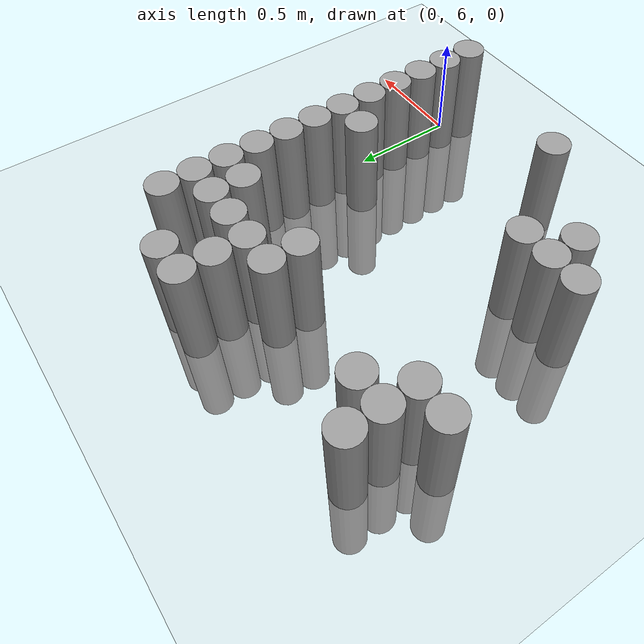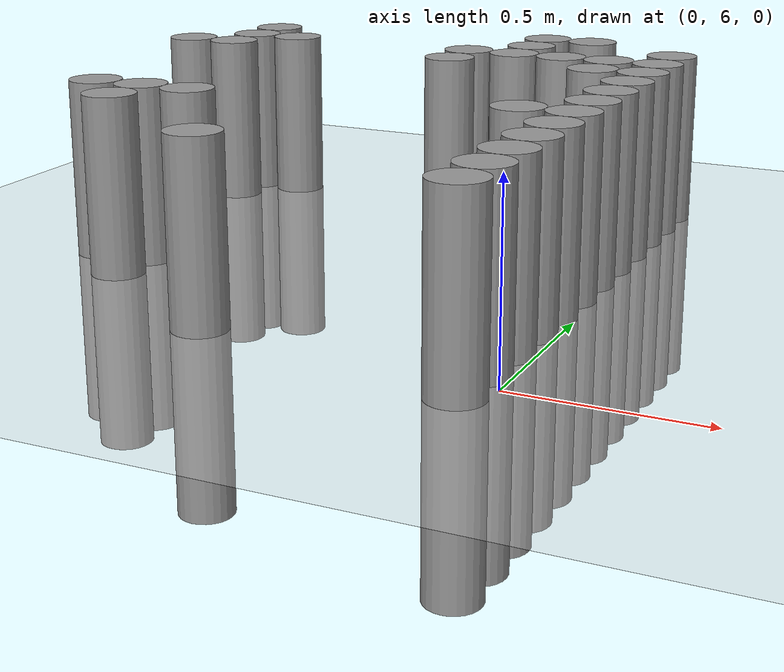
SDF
<sdf version="1.6">
 <world name="default">
  <model name="ground_plane">
   <static>1</static>
   <static>1</static>
   <link name="link">
    <collision name="collision">
     <geometry><plane><normal>0 0 1</normal><size>100 100</size></plane></geometry>
     <surface><friction><ode><mu>100</mu><mu2>50</mu2></ode></friction></surface>
    </collision>
    <visual name="visual">
     <cast_shadows>0</cast_shadows>
     <geometry><plane><normal>0 0 1</normal><size>100 100</size></plane></geometry>
     <material>
      <script><uri>file://media/materials/scripts/gazebo.material</uri><name>Gazebo/Grey</name></script>
     </material>
    </visual>
   </link>
  </model>
  <model name="unit_cylinder_179">
   <static>1</static>
   <pose>-1.575000 7.275000 0.000000 0.000000 0.000000 0.000000</pose>
   <link name="link">
    <inertial>
     <mass>1</mass>
     <inertia><ixx>0.145833</ixx><ixy>0</ixy><ixz>0</ixz><iyy>0.145833</iyy><iyz>0</iyz><izz>0.125</izz></inertia>
    </inertial>
    <collision name="collision">
     <geometry><cylinder><radius>0.075000</radius><length>1</length></cylinder></geometry>
    </collision>
    <visual name="visual">
     <geometry><cylinder><radius>0.075000</radius><length>1</length></cylinder></geometry>
     <material>
      <script><name>Gazebo/Grey</name><uri>file://media/materials/scripts/gazebo.material</uri></script>
     </material>
    </visual>
   </link>
  </model>
  <model name="unit_cylinder_189">
   <static>1</static>
   <pose>-1.425000 6.525000 0.000000 0.000000 0.000000 0.000000</pose>
   <link name="link">
    <inertial>
     <mass>1</mass>
     <inertia><ixx>0.145833</ixx><ixy>0</ixy><ixz>0</ixz><iyy>0.145833</iyy><iyz>0</iyz><izz>0.125</izz></inertia>
    </inertial>
    <collision name="collision">
     <geometry><cylinder><radius>0.075000</radius><length>1</length></cylinder></geometry>
    </collision>
    <visual name="visual">
     <geometry><cylinder><radius>0.075000</radius><length>1</length></cylinder></geometry>
     <material>
      <script><name>Gazebo/Grey</name><uri>file://media/materials/scripts/gazebo.material</uri></script>
     </material>
    </visual>
   </link>
  </model>
  <model name="unit_cylinder_190">
   <static>1</static>
   <pose>-1.425000 7.275000 0.000000 0.000000 0.000000 0.000000</pose>
   <link name="link">
    <inertial>
     <mass>1</mass>
     <inertia><ixx>0.145833</ixx><ixy>0</ixy><ixz>0</ixz><iyy>0.145833</iyy><iyz>0</iyz><izz>0.125</izz></inertia>
    </inertial>
    <collision name="collision">
     <geometry><cylinder><radius>0.075000</radius><length>1</length></cylinder></geometry>
    </collision>
    <visual name="visual">
     <geometry><cylinder><radius>0.075000</radius><length>1</length></cylinder></geometry>
     <material>
      <script><name>Gazebo/Grey</name><uri>file://media/materials/scripts/gazebo.material</uri></script>
     </material>
    </visual>
   </link>
  </model>
  <model name="unit_cylinder_191">
   <static>1</static>
   <pose>-1.425000 7.425000 0.000000 0.000000 0.000000 0.000000</pose>
   <link name="link">
    <inertial>
     <mass>1</mass>
     <inertia><ixx>0.145833</ixx><ixy>0</ixy><ixz>0</ixz><iyy>0.145833</iyy><iyz>0</iyz><izz>0.125</izz></inertia>
    </inertial>
    <collision name="collision">
     <geometry><cylinder><radius>0.075000</radius><length>1</length></cylinder></geometry>
    </collision>
    <visual name="visual">
     <geometry><cylinder><radius>0.075000</radius><length>1</length></cylinder></geometry>
     <material>
      <script><name>Gazebo/Grey</name><uri>file://media/materials/scripts/gazebo.material</uri></script>
     </material>
    </visual>
   </link>
  </model>
  <model name="unit_cylinder_192">
   <static>1</static>
   <pose>-1.425000 7.575000 0.000000 0.000000 0.000000 0.000000</pose>
   <link name="link">
    <inertial>
     <mass>1</mass>
     <inertia><ixx>0.145833</ixx><ixy>0</ixy><ixz>0</ixz><iyy>0.145833</iyy><iyz>0</iyz><izz>0.125</izz></inertia>
    </inertial>
    <collision name="collision">
     <geometry><cylinder><radius>0.075000</radius><length>1</length></cylinder></geometry>
    </collision>
    <visual name="visual">
     <geometry><cylinder><radius>0.075000</radius><length>1</length></cylinder></geometry>
     <material>
      <script><name>Gazebo/Grey</name><uri>file://media/materials/scripts/gazebo.material</uri></script>
     </material>
    </visual>
   </link>
  </model>
  <model name="unit_cylinder_199">
   <static>1</static>
   <pose>-1.275000 6.375000 0.000000 0.000000 0.000000 0.000000</pose>
   <link name="link">
    <inertial>
     <mass>1</mass>
     <inertia><ixx>0.145833</ixx><ixy>0</ixy><ixz>0</ixz><iyy>0.145833</iyy><iyz>0</iyz><izz>0.125</izz></inertia>
    </inertial>
    <collision name="collision">
     <geometry><cylinder><radius>0.075000</radius><length>1</length></cylinder></geometry>
    </collision>
    <visual name="visual">
     <geometry><cylinder><radius>0.075000</radius><length>1</length></cylinder></geometry>
     <material>
      <script><name>Gazebo/Grey</name><uri>file://media/materials/scripts/gazebo.material</uri></script>
     </material>
    </visual>
   </link>
  </model>
  <model name="unit_cylinder_200">
   <static>1</static>
   <pose>-1.275000 6.525000 0.000000 0.000000 0.000000 0.000000</pose>
   <link name="link">
    <inertial>
     <mass>1</mass>
     <inertia><ixx>0.145833</ixx><ixy>0</ixy><ixz>0</ixz><iyy>0.145833</iyy><iyz>0</iyz><izz>0.125</izz></inertia>
    </inertial>
    <collision name="collision">
     <geometry><cylinder><radius>0.075000</radius><length>1</length></cylinder></geometry>
    </collision>
    <visual name="visual">
     <geometry><cylinder><radius>0.075000</radius><length>1</length></cylinder></geometry>
     <material>
      <script><name>Gazebo/Grey</name><uri>file://media/materials/scripts/gazebo.material</uri></script>
     </material>
    </visual>
   </link>
  </model>
  <model name="unit_cylinder_201">
   <static>1</static>
   <pose>-1.275000 7.425000 0.000000 0.000000 0.000000 0.000000</pose>
   <link name="link">
    <inertial>
     <mass>1</mass>
     <inertia><ixx>0.145833</ixx><ixy>0</ixy><ixz>0</ixz><iyy>0.145833</iyy><iyz>0</iyz><izz>0.125</izz></inertia>
    </inertial>
    <collision name="collision">
     <geometry><cylinder><radius>0.075000</radius><length>1</length></cylinder></geometry>
    </collision>
    <visual name="visual">
     <geometry><cylinder><radius>0.075000</radius><length>1</length></cylinder></geometry>
     <material>
      <script><name>Gazebo/Grey</name><uri>file://media/materials/scripts/gazebo.material</uri></script>
     </material>
    </visual>
   </link>
  </model>
  <model name="unit_cylinder_204">
   <static>1</static>
   <pose>-1.125000 6.525000 0.000000 0.000000 0.000000 0.000000</pose>
   <link name="link">
    <inertial>
     <mass>1</mass>
     <inertia><ixx>0.145833</ixx><ixy>0</ixy><ixz>0</ixz><iyy>0.145833</iyy><iyz>0</iyz><izz>0.125</izz></inertia>
    </inertial>
    <collision name="collision">
     <geometry><cylinder><radius>0.075000</radius><length>1</length></cylinder></geometry>
    </collision>
    <visual name="visual">
     <geometry><cylinder><radius>0.075000</radius><length>1</length></cylinder></geometry>
     <material>
      <script><name>Gazebo/Grey</name><uri>file://media/materials/scripts/gazebo.material</uri></script>
     </material>
    </visual>
   </link>
  </model>
  <model name="unit_cylinder_205">
   <static>1</static>
   <pose>-0.825000 6.075000 0.000000 0.000000 0.000000 0.000000</pose>
   <link name="link">
    <inertial>
     <mass>1</mass>
     <inertia><ixx>0.145833</ixx><ixy>0</ixy><ixz>0</ixz><iyy>0.145833</iyy><iyz>0</iyz><izz>0.125</izz></inertia>
    </inertial>
    <collision name="collision">
     <geometry><cylinder><radius>0.075000</radius><length>1</length></cylinder></geometry>
    </collision>
    <visual name="visual">
     <geometry><cylinder><radius>0.075000</radius><length>1</length></cylinder></geometry>
     <material>
      <script><name>Gazebo/Grey</name><uri>file://media/materials/scripts/gazebo.material</uri></script>
     </material>
    </visual>
   </link>
  </model>
  <model name="unit_cylinder_208">
   <static>1</static>
   <pose>-0.675000 7.275000 0.000000 0.000000 0.000000 0.000000</pose>
   <link name="link">
    <inertial>
     <mass>1</mass>
     <inertia><ixx>0.145833</ixx><ixy>0</ixy><ixz>0</ixz><iyy>0.145833</iyy><iyz>0</iyz><izz>0.125</izz></inertia>
    </inertial>
    <collision name="collision">
     <geometry><cylinder><radius>0.075000</radius><length>1</length></cylinder></geometry>
    </collision>
    <visual name="visual">
     <geometry><cylinder><radius>0.075000</radius><length>1</length></cylinder></geometry>
     <material>
      <script><name>Gazebo/Grey</name><uri>file://media/materials/scripts/gazebo.material</uri></script>
     </material>
    </visual>
   </link>
  </model>
  <model name="unit_cylinder_209">
   <static>1</static>
   <pose>-0.675000 7.425000 0.000000 0.000000 0.000000 0.000000</pose>
   <link name="link">
    <inertial>
     <mass>1</mass>
     <inertia><ixx>0.145833</ixx><ixy>0</ixy><ixz>0</ixz><iyy>0.145833</iyy><iyz>0</iyz><izz>0.125</izz></inertia>
    </inertial>
    <collision name="collision">
     <geometry><cylinder><radius>0.075000</radius><length>1</length></cylinder></geometry>
    </collision>
    <visual name="visual">
     <geometry><cylinder><radius>0.075000</radius><length>1</length></cylinder></geometry>
     <material>
      <script><name>Gazebo/Grey</name><uri>file://media/materials/scripts/gazebo.material</uri></script>
     </material>
    </visual>
   </link>
  </model>
  <model name="unit_cylinder_211">
   <static>1</static>
   <pose>-0.525000 7.425000 0.000000 0.000000 0.000000 0.000000</pose>
   <link name="link">
    <inertial>
     <mass>1</mass>
     <inertia><ixx>0.145833</ixx><ixy>0</ixy><ixz>0</ixz><iyy>0.145833</iyy><iyz>0</iyz><izz>0.125</izz></inertia>
    </inertial>
    <collision name="collision">
     <geometry><cylinder><radius>0.075000</radius><length>1</length></cylinder></geometry>
    </collision>
    <visual name="visual">
     <geometry><cylinder><radius>0.075000</radius><length>1</length></cylinder></geometry>
     <material>
      <script><name>Gazebo/Grey</name><uri>file://media/materials/scripts/gazebo.material</uri></script>
     </material>
    </visual>
   </link>
  </model>
  <model name="unit_cylinder_212">
   <static>1</static>
   <pose>-0.525000 7.575000 0.000000 0.000000 0.000000 0.000000</pose>
   <link name="link">
    <inertial>
     <mass>1</mass>
     <inertia><ixx>0.145833</ixx><ixy>0</ixy><ixz>0</ixz><iyy>0.145833</iyy><iyz>0</iyz><izz>0.125</izz></inertia>
    </inertial>
    <collision name="collision">
     <geometry><cylinder><radius>0.075000</radius><length>1</length></cylinder></geometry>
    </collision>
    <visual name="visual">
     <geometry><cylinder><radius>0.075000</radius><length>1</length></cylinder></geometry>
     <material>
      <script><name>Gazebo/Grey</name><uri>file://media/materials/scripts/gazebo.material</uri></script>
     </material>
    </visual>
   </link>
  </model>
  <model name="unit_cylinder_213">
   <static>1</static>
   <pose>-0.525000 7.725000 0.000000 0.000000 0.000000 0.000000</pose>
   <link name="link">
    <inertial>
     <mass>1</mass>
     <inertia><ixx>0.145833</ixx><ixy>0</ixy><ixz>0</ixz><iyy>0.145833</iyy><iyz>0</iyz><izz>0.125</izz></inertia>
    </inertial>
    <collision name="collision">
     <geometry><cylinder><radius>0.075000</radius><length>1</length></cylinder></geometry>
    </collision>
    <visual name="visual">
     <geometry><cylinder><radius>0.075000</radius><length>1</length></cylinder></geometry>
     <material>
      <script><name>Gazebo/Grey</name><uri>file://media/materials/scripts/gazebo.material</uri></script>
     </material>
    </visual>
   </link>
  </model>
  <model name="unit_cylinder_214">
   <static>1</static>
   <pose>-0.375000 7.425000 0.000000 0.000000 0.000000 0.000000</pose>
   <link name="link">
    <inertial>
     <mass>1</mass>
     <inertia><ixx>0.145833</ixx><ixy>0</ixy><ixz>0</ixz><iyy>0.145833</iyy><iyz>0</iyz><izz>0.125</izz></inertia>
    </inertial>
    <collision name="collision">
     <geometry><cylinder><radius>0.075000</radius><length>1</length></cylinder></geometry>
    </collision>
    <visual name="visual">
     <geometry><cylinder><radius>0.075000</radius><length>1</length></cylinder></geometry>
     <material>
      <script><name>Gazebo/Grey</name><uri>file://media/materials/scripts/gazebo.material</uri></script>
     </material>
    </visual>
   </link>
  </model>
  <model name="unit_cylinder_215">
   <static>1</static>
   <pose>-0.375000 7.725000 0.000000 0.000000 0.000000 0.000000</pose>
   <link name="link">
    <inertial>
     <mass>1</mass>
     <inertia><ixx>0.145833</ixx><ixy>0</ixy><ixz>0</ixz><iyy>0.145833</iyy><iyz>0</iyz><izz>0.125</izz></inertia>
    </inertial>
    <collision name="collision">
     <geometry><cylinder><radius>0.075000</radius><length>1</length></cylinder></geometry>
    </collision>
    <visual name="visual">
     <geometry><cylinder><radius>0.075000</radius><length>1</length></cylinder></geometry>
     <material>
      <script><name>Gazebo/Grey</name><uri>file://media/materials/scripts/gazebo.material</uri></script>
     </material>
    </visual>
   </link>
  </model>
  <model name="unit_cylinder_216">
   <static>1</static>
   <pose>-0.225000 6.675000 0.000000 0.000000 0.000000 0.000000</pose>
   <link name="link">
    <inertial>
     <mass>1</mass>
     <inertia><ixx>0.145833</ixx><ixy>0</ixy><ixz>0</ixz><iyy>0.145833</iyy><iyz>0</iyz><izz>0.125</izz></inertia>
    </inertial>
    <collision name="collision">
     <geometry><cylinder><radius>0.075000</radius><length>1</length></cylinder></geometry>
    </collision>
    <visual name="visual">
     <geometry><cylinder><radius>0.075000</radius><length>1</length></cylinder></geometry>
     <material>
      <script><name>Gazebo/Grey</name><uri>file://media/materials/scripts/gazebo.material</uri></script>
     </material>
    </visual>
   </link>
  </model>
  <model name="unit_cylinder_217">
   <static>1</static>
   <pose>-0.225000 7.275000 0.000000 0.000000 0.000000 0.000000</pose>
   <link name="link">
    <inertial>
     <mass>1</mass>
     <inertia><ixx>0.145833</ixx><ixy>0</ixy><ixz>0</ixz><iyy>0.145833</iyy><iyz>0</iyz><izz>0.125</izz></inertia>
    </inertial>
    <collision name="collision">
     <geometry><cylinder><radius>0.075000</radius><length>1</length></cylinder></geometry>
    </collision>
    <visual name="visual">
     <geometry><cylinder><radius>0.075000</radius><length>1</length></cylinder></geometry>
     <material>
      <script><name>Gazebo/Grey</name><uri>file://media/materials/scripts/gazebo.material</uri></script>
     </material>
    </visual>
   </link>
  </model>
  <model name="unit_cylinder_218">
   <static>1</static>
   <pose>-0.225000 7.425000 0.000000 0.000000 0.000000 0.000000</pose>
   <link name="link">
    <inertial>
     <mass>1</mass>
     <inertia><ixx>0.145833</ixx><ixy>0</ixy><ixz>0</ixz><iyy>0.145833</iyy><iyz>0</iyz><izz>0.125</izz></inertia>
    </inertial>
    <collision name="collision">
     <geometry><cylinder><radius>0.075000</radius><length>1</length></cylinder></geometry>
    </collision>
    <visual name="visual">
     <geometry><cylinder><radius>0.075000</radius><length>1</length></cylinder></geometry>
     <material>
      <script><name>Gazebo/Grey</name><uri>file://media/materials/scripts/gazebo.material</uri></script>
     </material>
    </visual>
   </link>
  </model>
  <model name="unit_cylinder_229">
   <static>1</static>
   <pose>-0.075000 5.925000 0.000000 0.000000 0.000000 0.000000</pose>
   <link name="link">
    <inertial>
     <mass>1</mass>
     <inertia><ixx>0.145833</ixx><ixy>0</ixy><ixz>0</ixz><iyy>0.145833</iyy><iyz>0</iyz><izz>0.125</izz></inertia>
    </inertial>
    <collision name="collision">
     <geometry><cylinder><radius>0.075000</radius><length>1</length></cylinder></geometry>
    </collision>
    <visual name="visual">
     <geometry><cylinder><radius>0.075000</radius><length>1</length></cylinder></geometry>
     <material>
      <script><name>Gazebo/Grey</name><uri>file://media/materials/scripts/gazebo.material</uri></script>
     </material>
    </visual>
   </link>
  </model>
  <model name="unit_cylinder_230">
   <static>1</static>
   <pose>-0.075000 6.075000 0.000000 0.000000 0.000000 0.000000</pose>
   <link name="link">
    <inertial>
     <mass>1</mass>
     <inertia><ixx>0.145833</ixx><ixy>0</ixy><ixz>0</ixz><iyy>0.145833</iyy><iyz>0</iyz><izz>0.125</izz></inertia>
    </inertial>
    <collision name="collision">
     <geometry><cylinder><radius>0.075000</radius><length>1</length></cylinder></geometry>
    </collision>
    <visual name="visual">
     <geometry><cylinder><radius>0.075000</radius><length>1</length></cylinder></geometry>
     <material>
      <script><name>Gazebo/Grey</name><uri>file://media/materials/scripts/gazebo.material</uri></script>
     </material>
    </visual>
   </link>
  </model>
  <model name="unit_cylinder_231">
   <static>1</static>
   <pose>-0.075000 6.225000 0.000000 0.000000 0.000000 0.000000</pose>
   <link name="link">
    <inertial>
     <mass>1</mass>
     <inertia><ixx>0.145833</ixx><ixy>0</ixy><ixz>0</ixz><iyy>0.145833</iyy><iyz>0</iyz><izz>0.125</izz></inertia>
    </inertial>
    <collision name="collision">
     <geometry><cylinder><radius>0.075000</radius><length>1</length></cylinder></geometry>
    </collision>
    <visual name="visual">
     <geometry><cylinder><radius>0.075000</radius><length>1</length></cylinder></geometry>
     <material>
      <script><name>Gazebo/Grey</name><uri>file://media/materials/scripts/gazebo.material</uri></script>
     </material>
    </visual>
   </link>
  </model>
  <model name="unit_cylinder_232">
   <static>1</static>
   <pose>-0.075000 6.375000 0.000000 0.000000 0.000000 0.000000</pose>
   <link name="link">
    <inertial>
     <mass>1</mass>
     <inertia><ixx>0.145833</ixx><ixy>0</ixy><ixz>0</ixz><iyy>0.145833</iyy><iyz>0</iyz><izz>0.125</izz></inertia>
    </inertial>
    <collision name="collision">
     <geometry><cylinder><radius>0.075000</radius><length>1</length></cylinder></geometry>
    </collision>
    <visual name="visual">
     <geometry><cylinder><radius>0.075000</radius><length>1</length></cylinder></geometry>
     <material>
      <script><name>Gazebo/Grey</name><uri>file://media/materials/scripts/gazebo.material</uri></script>
     </material>
    </visual>
   </link>
  </model>
  <model name="unit_cylinder_233">
   <static>1</static>
   <pose>-0.075000 6.525000 0.000000 0.000000 0.000000 0.000000</pose>
   <link name="link">
    <inertial>
     <mass>1</mass>
     <inertia><ixx>0.145833</ixx><ixy>0</ixy><ixz>0</ixz><iyy>0.145833</iyy><iyz>0</iyz><izz>0.125</izz></inertia>
    </inertial>
    <collision name="collision">
     <geometry><cylinder><radius>0.075000</radius><length>1</length></cylinder></geometry>
    </collision>
    <visual name="visual">
     <geometry><cylinder><radius>0.075000</radius><length>1</length></cylinder></geometry>
     <material>
      <script><name>Gazebo/Grey</name><uri>file://media/materials/scripts/gazebo.material</uri></script>
     </material>
    </visual>
   </link>
  </model>
  <model name="unit_cylinder_234">
   <static>1</static>
   <pose>-0.075000 6.675000 0.000000 0.000000 0.000000 0.000000</pose>
   <link name="link">
    <inertial>
     <mass>1</mass>
     <inertia><ixx>0.145833</ixx><ixy>0</ixy><ixz>0</ixz><iyy>0.145833</iyy><iyz>0</iyz><izz>0.125</izz></inertia>
    </inertial>
    <collision name="collision">
     <geometry><cylinder><radius>0.075000</radius><length>1</length></cylinder></geometry>
    </collision>
    <visual name="visual">
     <geometry><cylinder><radius>0.075000</radius><length>1</length></cylinder></geometry>
     <material>
      <script><name>Gazebo/Grey</name><uri>file://media/materials/scripts/gazebo.material</uri></script>
     </material>
    </visual>
   </link>
  </model>
  <model name="unit_cylinder_235">
   <static>1</static>
   <pose>-0.075000 6.825000 0.000000 0.000000 0.000000 0.000000</pose>
   <link name="link">
    <inertial>
     <mass>1</mass>
     <inertia><ixx>0.145833</ixx><ixy>0</ixy><ixz>0</ixz><iyy>0.145833</iyy><iyz>0</iyz><izz>0.125</izz></inertia>
    </inertial>
    <collision name="collision">
     <geometry><cylinder><radius>0.075000</radius><length>1</length></cylinder></geometry>
    </collision>
    <visual name="visual">
     <geometry><cylinder><radius>0.075000</radius><length>1</length></cylinder></geometry>
     <material>
      <script><name>Gazebo/Grey</name><uri>file://media/materials/scripts/gazebo.material</uri></script>
     </material>
    </visual>
   </link>
  </model>
  <model name="unit_cylinder_236">
   <static>1</static>
   <pose>-0.075000 6.975000 0.000000 0.000000 0.000000 0.000000</pose>
   <link name="link">
    <inertial>
     <mass>1</mass>
     <inertia><ixx>0.145833</ixx><ixy>0</ixy><ixz>0</ixz><iyy>0.145833</iyy><iyz>0</iyz><izz>0.125</izz></inertia>
    </inertial>
    <collision name="collision">
     <geometry><cylinder><radius>0.075000</radius><length>1</length></cylinder></geometry>
    </collision>
    <visual name="visual">
     <geometry><cylinder><radius>0.075000</radius><length>1</length></cylinder></geometry>
     <material>
      <script><name>Gazebo/Grey</name><uri>file://media/materials/scripts/gazebo.material</uri></script>
     </material>
    </visual>
   </link>
  </model>
  <model name="unit_cylinder_237">
   <static>1</static>
   <pose>-0.075000 7.125000 0.000000 0.000000 0.000000 0.000000</pose>
   <link name="link">
    <inertial>
     <mass>1</mass>
     <inertia><ixx>0.145833</ixx><ixy>0</ixy><ixz>0</ixz><iyy>0.145833</iyy><iyz>0</iyz><izz>0.125</izz></inertia>
    </inertial>
    <collision name="collision">
     <geometry><cylinder><radius>0.075000</radius><length>1</length></cylinder></geometry>
    </collision>
    <visual name="visual">
     <geometry><cylinder><radius>0.075000</radius><length>1</length></cylinder></geometry>
     <material>
      <script><name>Gazebo/Grey</name><uri>file://media/materials/scripts/gazebo.material</uri></script>
     </material>
    </visual>
   </link>
  </model>
  <model name="unit_cylinder_238">
   <static>1</static>
   <pose>-0.075000 7.275000 0.000000 0.000000 0.000000 0.000000</pose>
   <link name="link">
    <inertial>
     <mass>1</mass>
     <inertia><ixx>0.145833</ixx><ixy>0</ixy><ixz>0</ixz><iyy>0.145833</iyy><iyz>0</iyz><izz>0.125</izz></inertia>
    </inertial>
    <collision name="collision">
     <geometry><cylinder><radius>0.075000</radius><length>1</length></cylinder></geometry>
    </collision>
    <visual name="visual">
     <geometry><cylinder><radius>0.075000</radius><length>1</length></cylinder></geometry>
     <material>
      <script><name>Gazebo/Grey</name><uri>file://media/materials/scripts/gazebo.material</uri></script>
     </material>
    </visual>
   </link>
  </model>
  <model name="unit_cylinder_239">
   <static>1</static>
   <pose>-0.075000 7.425000 0.000000 0.000000 0.000000 0.000000</pose>
   <link name="link">
    <inertial>
     <mass>1</mass>
     <inertia><ixx>0.145833</ixx><ixy>0</ixy><ixz>0</ixz><iyy>0.145833</iyy><iyz>0</iyz><izz>0.125</izz></inertia>
    </inertial>
    <collision name="collision">
     <geometry><cylinder><radius>0.075000</radius><length>1</length></cylinder></geometry>
    </collision>
    <visual name="visual">
     <geometry><cylinder><radius>0.075000</radius><length>1</length></cylinder></geometry>
     <material>
      <script><name>Gazebo/Grey</name><uri>file://media/materials/scripts/gazebo.material</uri></script>
     </material>
    </visual>
   </link>
  </model>
  <model name="unit_cylinder_240">
   <static>1</static>
   <pose>-0.075000 7.575000 0.000000 0.000000 0.000000 0.000000</pose>
   <link name="link">
    <inertial>
     <mass>1</mass>
     <inertia><ixx>0.145833</ixx><ixy>0</ixy><ixz>0</ixz><iyy>0.145833</iyy><iyz>0</iyz><izz>0.125</izz></inertia>
    </inertial>
    <collision name="collision">
     <geometry><cylinder><radius>0.075000</radius><length>1</length></cylinder></geometry>
    </collision>
    <visual name="visual">
     <geometry><cylinder><radius>0.075000</radius><length>1</length></cylinder></geometry>
     <material>
      <script><name>Gazebo/Grey</name><uri>file://media/materials/scripts/gazebo.material</uri></script>
     </material>
    </visual>
   </link>
  </model>
 </world>
</sdf>
